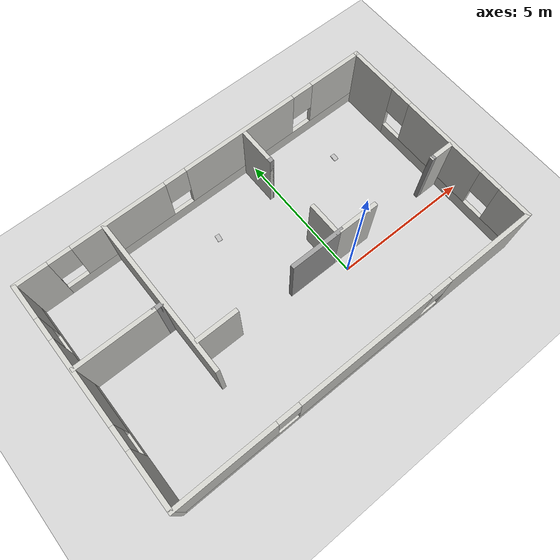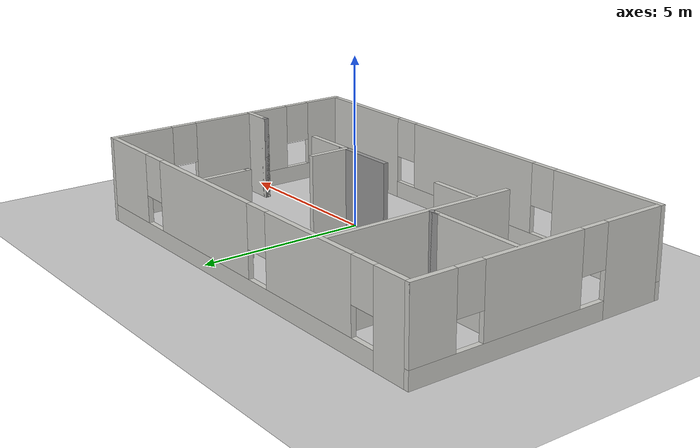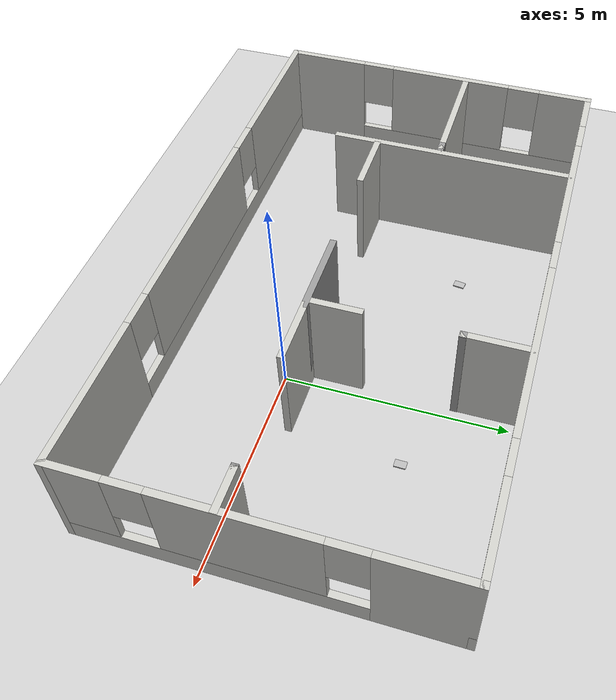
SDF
<sdf version="1.7">
 <world name="default">
  <light name="sun" type="directional">
   <pose>0 0 10 0 -0 0</pose>
   <diffuse>0.8 0.8 0.8 1</diffuse>
   <specular>0.2 0.2 0.2 1</specular>
   <attenuation>
    <range>1000</range>
    <constant>0.9</constant>
    <linear>0.01</linear>
    <quadratic>0.001</quadratic>
   </attenuation>
   <direction>-0.5 0.1 -0.9</direction>
   <spot><inner_angle>0</inner_angle><outer_angle>0</outer_angle><falloff>0</falloff></spot>
  </light>
  <model name="ground_plane">
   <static>1</static>
   <link name="link">
    <collision name="collision">
     <geometry><plane><normal>0 0 1</normal><size>100 100</size></plane></geometry>
     <surface><friction><ode><mu>100</mu><mu2>50</mu2></ode></friction></surface>
    </collision>
    <visual name="visual">
     <cast_shadows>0</cast_shadows>
     <geometry><plane><normal>0 0 1</normal><size>100 100</size></plane></geometry>
     <material>
      <script><uri>file://media/materials/scripts/gazebo.material</uri><name>Gazebo/Grey</name></script>
     </material>
    </visual>
   </link>
  </model>
  <gravity>0 0 -9.8</gravity>
  <magnetic_field>6e-06 2.3e-05 -4.2e-05</magnetic_field>
  <atmosphere type="adiabatic"/>
  <physics type="ode">
   <max_step_size>0.001</max_step_size>
   <real_time_factor>1</real_time_factor>
   <real_time_update_rate>1000</real_time_update_rate>
  </physics>
  <scene><ambient>0.4 0.4 0.4 1</ambient><background>0.7 0.7 0.7 1</background><shadows>1</shadows></scene>
  <audio><device>default</device></audio>
  <spherical_coordinates>
   <surface_model>EARTH_WGS84</surface_model>
   <latitude_deg>0</latitude_deg>
   <longitude_deg>0</longitude_deg>
   <elevation>0</elevation>
   <heading_deg>0</heading_deg>
  </spherical_coordinates>
  <model name="book_10">
   <link name="cover">
    <pose>0 -0.000108 0.015405 0 -0 0</pose>
    <visual name="visual">
     <geometry><box><size>0.245 0.16 0.03</size></box></geometry>
     <material>
      <script>
       <uri>model://book_10/materials/scripts</uri>
       <uri>model://book_10/materials/textures</uri>
       <name>book_10</name>
      </script>
     </material>
    </visual>
    <collision name="collision"><geometry><box><size>0.245 0.16 0.03</size></box></geometry></collision>
   </link>
   <link name="page">
    <pose>0 0.000608 0.015405 0 -0 0</pose>
    <visual name="visual">
     <geometry><box><size>0.24502 0.15862 0.028</size></box></geometry>
     <material>
      <lighting>1</lighting>
      <ambient>1 1 1 1</ambient>
      <diffuse>1 1 1 1</diffuse>
      <specular>0.01 0.01 0.01 1</specular>
      <emissive>0 0 0 1</emissive>
      <shader type="vertex"><normal_map>__default__</normal_map></shader>
     </material>
    </visual>
    <collision name="collision"><geometry><box><size>0.245 0.16 0.03</size></box></geometry></collision>
   </link>
   <static>1</static>
   <pose>-2.8831 3.22533 1.04702 0 -0 1.43256</pose>
  </model>
  <model name="book_2">
   <link name="cover">
    <pose>0 -0.000108 0.015405 0 -0 0</pose>
    <visual name="visual">
     <geometry><box><size>0.245 0.16 0.03</size></box></geometry>
     <material>
      <script>
       <uri>model://book_2/materials/scripts</uri>
       <uri>model://book_2/materials/textures</uri>
       <name>book_2</name>
      </script>
     </material>
    </visual>
    <collision name="collision"><geometry><box><size>0.245 0.16 0.03</size></box></geometry></collision>
   </link>
   <link name="page">
    <pose>0 0.000608 0.015405 0 -0 0</pose>
    <visual name="visual">
     <geometry><box><size>0.24502 0.15862 0.028</size></box></geometry>
     <material>
      <lighting>1</lighting>
      <ambient>1 1 1 1</ambient>
      <diffuse>1 1 1 1</diffuse>
      <specular>0.01 0.01 0.01 1</specular>
      <emissive>0 0 0 1</emissive>
      <shader type="vertex"><normal_map>__default__</normal_map></shader>
     </material>
    </visual>
    <collision name="collision"><geometry><box><size>0.245 0.16 0.03</size></box></geometry></collision>
   </link>
   <static>1</static>
   <pose>2.02369 3.14608 1.02891 0 -0 1.55345</pose>
  </model>
  <model name="Untitled_0">
   <pose>-2.05923 1.24358 0 0 -0 0</pose>
   <link name="Wall_0">
    <pose>-6.675 0 0 0 -0 1.5708</pose>
    <visual name="Wall_0_Visual_0">
     <pose>-2.99119 0 1.25 0 -0 0</pose>
     <geometry><box><size>2.01762 0.15 2.5</size></box></geometry>
     <material>
      <script><uri>file://media/materials/scripts/gazebo.material</uri><name>Gazebo/CeilingTiled</name></script>
      <ambient>1 1 1 1</ambient>
     </material>
     <meta><layer>0</layer></meta>
    </visual>
    <collision name="Wall_0_Collision_0">
     <geometry><box><size>2.01762 0.15 2.5</size></box></geometry>
     <pose>-2.99119 0 1.25 0 -0 0</pose>
    </collision>
    <visual name="Wall_0_Visual_1">
     <pose>1.00881 0 0.25 0 -0 0</pose>
     <geometry><box><size>5.98238 0.15 0.5</size></box></geometry>
     <material>
      <script><uri>file://media/materials/scripts/gazebo.material</uri><name>Gazebo/CeilingTiled</name></script>
      <ambient>1 1 1 1</ambient>
     </material>
     <meta><layer>0</layer></meta>
    </visual>
    <collision name="Wall_0_Collision_1">
     <geometry><box><size>5.98238 0.15 0.5</size></box></geometry>
     <pose>1.00881 0 0.25 0 -0 0</pose>
    </collision>
    <visual name="Wall_0_Visual_2">
     <pose>0.348522 0 1.5 0 -0 0</pose>
     <geometry><box><size>3.06181 0.15 2</size></box></geometry>
     <material>
      <script><uri>file://media/materials/scripts/gazebo.material</uri><name>Gazebo/CeilingTiled</name></script>
      <ambient>1 1 1 1</ambient>
     </material>
     <meta><layer>0</layer></meta>
    </visual>
    <collision name="Wall_0_Collision_2">
     <geometry><box><size>3.06181 0.15 2</size></box></geometry>
     <pose>0.348522 0 1.5 0 -0 0</pose>
    </collision>
    <visual name="Wall_0_Visual_3">
     <pose>3.33971 0 1.5 0 -0 0</pose>
     <geometry><box><size>1.32058 0.15 2</size></box></geometry>
     <material>
      <script><uri>file://media/materials/scripts/gazebo.material</uri><name>Gazebo/CeilingTiled</name></script>
      <ambient>1 1 1 1</ambient>
     </material>
     <meta><layer>0</layer></meta>
    </visual>
    <collision name="Wall_0_Collision_3">
     <geometry><box><size>1.32058 0.15 2</size></box></geometry>
     <pose>3.33971 0 1.5 0 -0 0</pose>
    </collision>
    <visual name="Wall_0_Visual_4">
     <pose>-1.58238 0 1.9 0 -0 0</pose>
     <geometry><box><size>0.8 0.15 1.2</size></box></geometry>
     <material>
      <script><uri>file://media/materials/scripts/gazebo.material</uri><name>Gazebo/CeilingTiled</name></script>
      <ambient>1 1 1 1</ambient>
     </material>
     <meta><layer>0</layer></meta>
    </visual>
    <collision name="Wall_0_Collision_4">
     <geometry><box><size>0.8 0.15 1.2</size></box></geometry>
     <pose>-1.58238 0 1.9 0 -0 0</pose>
    </collision>
    <visual name="Wall_0_Visual_5">
     <pose>2.27942 0 1.9 0 -0 0</pose>
     <geometry><box><size>0.8 0.15 1.2</size></box></geometry>
     <material>
      <script><uri>file://media/materials/scripts/gazebo.material</uri><name>Gazebo/CeilingTiled</name></script>
      <ambient>1 1 1 1</ambient>
     </material>
     <meta><layer>0</layer></meta>
    </visual>
    <collision name="Wall_0_Collision_5">
     <geometry><box><size>0.8 0.15 1.2</size></box></geometry>
     <pose>2.27942 0 1.9 0 -0 0</pose>
    </collision>
   </link>
   <link name="Wall_1">
    <pose>0 3.925 0 0 -0 0</pose>
    <visual name="Wall_1_Visual_0">
     <pose>-6.14513 0 1.25 0 -0 0</pose>
     <geometry><box><size>1.20975 0.15 2.5</size></box></geometry>
     <material>
      <script><uri>file://media/materials/scripts/gazebo.material</uri><name>Gazebo/CeilingTiled</name></script>
      <ambient>1 1 1 1</ambient>
     </material>
     <meta><layer>0</layer></meta>
    </visual>
    <collision name="Wall_1_Collision_0">
     <geometry><box><size>1.20975 0.15 2.5</size></box></geometry>
     <pose>-6.14513 0 1.25 0 -0 0</pose>
    </collision>
    <visual name="Wall_1_Visual_1">
     <pose>0.604874 0 0.25 0 -0 0</pose>
     <geometry><box><size>12.2903 0.15 0.5</size></box></geometry>
     <material>
      <script><uri>file://media/materials/scripts/gazebo.material</uri><name>Gazebo/CeilingTiled</name></script>
      <ambient>1 1 1 1</ambient>
     </material>
     <meta><layer>0</layer></meta>
    </visual>
    <collision name="Wall_1_Collision_1">
     <geometry><box><size>12.2903 0.15 0.5</size></box></geometry>
     <pose>0.604874 0 0.25 0 -0 0</pose>
    </collision>
    <visual name="Wall_1_Visual_2">
     <pose>-3.02833 0 1.5 0 -0 0</pose>
     <geometry><box><size>3.42385 0.15 2</size></box></geometry>
     <material>
      <script><uri>file://media/materials/scripts/gazebo.material</uri><name>Gazebo/CeilingTiled</name></script>
      <ambient>1 1 1 1</ambient>
     </material>
     <meta><layer>0</layer></meta>
    </visual>
    <collision name="Wall_1_Collision_2">
     <geometry><box><size>3.42385 0.15 2</size></box></geometry>
     <pose>-3.02833 0 1.5 0 -0 0</pose>
    </collision>
    <visual name="Wall_1_Visual_3">
     <pose>1.66819 0 1.5 0 -0 0</pose>
     <geometry><box><size>4.36919 0.15 2</size></box></geometry>
     <material>
      <script><uri>file://media/materials/scripts/gazebo.material</uri><name>Gazebo/CeilingTiled</name></script>
      <ambient>1 1 1 1</ambient>
     </material>
     <meta><layer>0</layer></meta>
    </visual>
    <collision name="Wall_1_Collision_3">
     <geometry><box><size>4.36919 0.15 2</size></box></geometry>
     <pose>1.66819 0 1.5 0 -0 0</pose>
    </collision>
    <visual name="Wall_1_Visual_4">
     <pose>5.70139 0 1.5 0 -0 0</pose>
     <geometry><box><size>2.09721 0.15 2</size></box></geometry>
     <material>
      <script><uri>file://media/materials/scripts/gazebo.material</uri><name>Gazebo/CeilingTiled</name></script>
      <ambient>1 1 1 1</ambient>
     </material>
     <meta><layer>0</layer></meta>
    </visual>
    <collision name="Wall_1_Collision_4">
     <geometry><box><size>2.09721 0.15 2</size></box></geometry>
     <pose>5.70139 0 1.5 0 -0 0</pose>
    </collision>
    <visual name="Wall_1_Visual_5">
     <pose>-5.14025 0 1.9 0 -0 0</pose>
     <geometry><box><size>0.8 0.15 1.2</size></box></geometry>
     <material>
      <script><uri>file://media/materials/scripts/gazebo.material</uri><name>Gazebo/CeilingTiled</name></script>
      <ambient>1 1 1 1</ambient>
     </material>
     <meta><layer>0</layer></meta>
    </visual>
    <collision name="Wall_1_Collision_5">
     <geometry><box><size>0.8 0.15 1.2</size></box></geometry>
     <pose>-5.14025 0 1.9 0 -0 0</pose>
    </collision>
    <visual name="Wall_1_Visual_6">
     <pose>-0.916401 0 1.9 0 -0 0</pose>
     <geometry><box><size>0.8 0.15 1.2</size></box></geometry>
     <material>
      <script><uri>file://media/materials/scripts/gazebo.material</uri><name>Gazebo/CeilingTiled</name></script>
      <ambient>1 1 1 1</ambient>
     </material>
     <meta><layer>0</layer></meta>
    </visual>
    <collision name="Wall_1_Collision_6">
     <geometry><box><size>0.8 0.15 1.2</size></box></geometry>
     <pose>-0.916401 0 1.9 0 -0 0</pose>
    </collision>
    <visual name="Wall_1_Visual_7">
     <pose>4.25279 0 1.9 0 -0 0</pose>
     <geometry><box><size>0.8 0.15 1.2</size></box></geometry>
     <material>
      <script><uri>file://media/materials/scripts/gazebo.material</uri><name>Gazebo/CeilingTiled</name></script>
      <ambient>1 1 1 1</ambient>
     </material>
     <meta><layer>0</layer></meta>
    </visual>
    <collision name="Wall_1_Collision_7">
     <geometry><box><size>0.8 0.15 1.2</size></box></geometry>
     <pose>4.25279 0 1.9 0 -0 0</pose>
    </collision>
   </link>
   <link name="Wall_10">
    <collision name="Wall_10_Collision">
     <geometry><box><size>0.25 0.15 2.5</size></box></geometry>
     <pose>0 0 1.25 0 -0 0</pose>
    </collision>
    <visual name="Wall_10_Visual">
     <pose>0 0 1.25 0 -0 0</pose>
     <geometry><box><size>0.25 0.15 2.5</size></box></geometry>
     <material>
      <script><uri>file://media/materials/scripts/gazebo.material</uri><name>Gazebo/Grey</name></script>
      <ambient>1 1 1 1</ambient>
     </material>
     <meta><layer>0</layer></meta>
    </visual>
    <pose>-3.83103 0.774776 0 0 -0 3.14159</pose>
   </link>
   <link name="Wall_15">
    <collision name="Wall_15_Collision">
     <geometry><box><size>0.25 0.15 2.5</size></box></geometry>
     <pose>0 0 1.25 0 -0 0</pose>
    </collision>
    <visual name="Wall_15_Visual">
     <pose>0 0 1.25 0 -0 0</pose>
     <geometry><box><size>0.25 0.15 2.5</size></box></geometry>
     <material>
      <script><uri>file://media/materials/scripts/gazebo.material</uri><name>Gazebo/Grey</name></script>
      <ambient>1 1 1 1</ambient>
     </material>
     <meta><layer>0</layer></meta>
    </visual>
    <pose>-3.73103 0.774776 0 0 -0 0</pose>
   </link>
   <link name="Wall_17">
    <collision name="Wall_17_Collision">
     <geometry><box><size>1.5 0.15 2.5</size></box></geometry>
     <pose>0 0 1.25 0 -0 0</pose>
    </collision>
    <visual name="Wall_17_Visual">
     <pose>0 0 1.25 0 -0 0</pose>
     <geometry><box><size>1.5 0.15 2.5</size></box></geometry>
     <material>
      <script><uri>file://media/materials/scripts/gazebo.material</uri><name>Gazebo/CeilingTiled</name></script>
      <ambient>1 1 1 1</ambient>
     </material>
     <meta><layer>0</layer></meta>
    </visual>
    <pose>-2.79582 -0.737611 0 0 -0 0</pose>
   </link>
   <link name="Wall_19">
    <collision name="Wall_19_Collision">
     <geometry><box><size>1.5 0.15 2.5</size></box></geometry>
     <pose>0 0 1.25 0 -0 0</pose>
    </collision>
    <visual name="Wall_19_Visual">
     <pose>0 0 1.25 0 -0 0</pose>
     <geometry><box><size>1.5 0.15 2.5</size></box></geometry>
     <material>
      <script><uri>file://media/materials/scripts/gazebo.material</uri><name>Gazebo/CeilingTiled</name></script>
      <ambient>1 1 1 1</ambient>
     </material>
     <meta><layer>0</layer></meta>
    </visual>
    <pose>1.77882 3.1934 0 0 -0 -1.5708</pose>
   </link>
   <link name="Wall_2">
    <pose>6.675 0 0 0 -0 -1.5708</pose>
    <visual name="Wall_2_Visual_0">
     <pose>-3.03801 0 1.25 0 -0 0</pose>
     <geometry><box><size>1.92398 0.15 2.5</size></box></geometry>
     <material>
      <script><uri>file://media/materials/scripts/gazebo.material</uri><name>Gazebo/CeilingTiled</name></script>
      <ambient>1 1 1 1</ambient>
     </material>
     <meta><layer>0</layer></meta>
    </visual>
    <collision name="Wall_2_Collision_0">
     <geometry><box><size>1.92398 0.15 2.5</size></box></geometry>
     <pose>-3.03801 0 1.25 0 -0 0</pose>
    </collision>
    <visual name="Wall_2_Visual_1">
     <pose>0.961991 0 0.25 0 -0 0</pose>
     <geometry><box><size>6.07602 0.15 0.5</size></box></geometry>
     <material>
      <script><uri>file://media/materials/scripts/gazebo.material</uri><name>Gazebo/CeilingTiled</name></script>
      <ambient>1 1 1 1</ambient>
     </material>
     <meta><layer>0</layer></meta>
    </visual>
    <collision name="Wall_2_Collision_1">
     <geometry><box><size>6.07602 0.15 0.5</size></box></geometry>
     <pose>0.961991 0 0.25 0 -0 0</pose>
    </collision>
    <visual name="Wall_2_Visual_2">
     <pose>0.345397 0 1.5 0 -0 0</pose>
     <geometry><box><size>3.24283 0.15 2</size></box></geometry>
     <material>
      <script><uri>file://media/materials/scripts/gazebo.material</uri><name>Gazebo/CeilingTiled</name></script>
      <ambient>1 1 1 1</ambient>
     </material>
     <meta><layer>0</layer></meta>
    </visual>
    <collision name="Wall_2_Collision_2">
     <geometry><box><size>3.24283 0.15 2</size></box></geometry>
     <pose>0.345397 0 1.5 0 -0 0</pose>
    </collision>
    <visual name="Wall_2_Visual_3">
     <pose>3.38341 0 1.5 0 -0 0</pose>
     <geometry><box><size>1.23319 0.15 2</size></box></geometry>
     <material>
      <script><uri>file://media/materials/scripts/gazebo.material</uri><name>Gazebo/CeilingTiled</name></script>
      <ambient>1 1 1 1</ambient>
     </material>
     <meta><layer>0</layer></meta>
    </visual>
    <collision name="Wall_2_Collision_3">
     <geometry><box><size>1.23319 0.15 2</size></box></geometry>
     <pose>3.38341 0 1.5 0 -0 0</pose>
    </collision>
    <visual name="Wall_2_Visual_4">
     <pose>-1.67602 0 1.9 0 -0 0</pose>
     <geometry><box><size>0.8 0.15 1.2</size></box></geometry>
     <material>
      <script><uri>file://media/materials/scripts/gazebo.material</uri><name>Gazebo/CeilingTiled</name></script>
      <ambient>1 1 1 1</ambient>
     </material>
     <meta><layer>0</layer></meta>
    </visual>
    <collision name="Wall_2_Collision_4">
     <geometry><box><size>0.8 0.15 1.2</size></box></geometry>
     <pose>-1.67602 0 1.9 0 -0 0</pose>
    </collision>
    <visual name="Wall_2_Visual_5">
     <pose>2.36681 0 1.9 0 -0 0</pose>
     <geometry><box><size>0.8 0.15 1.2</size></box></geometry>
     <material>
      <script><uri>file://media/materials/scripts/gazebo.material</uri><name>Gazebo/CeilingTiled</name></script>
      <ambient>1 1 1 1</ambient>
     </material>
     <meta><layer>0</layer></meta>
    </visual>
    <collision name="Wall_2_Collision_5">
     <geometry><box><size>0.8 0.15 1.2</size></box></geometry>
     <pose>2.36681 0 1.9 0 -0 0</pose>
    </collision>
   </link>
   <link name="Wall_20">
    <collision name="Wall_20_Collision">
     <geometry><box><size>0.16 0.15 2.5</size></box></geometry>
     <pose>0 0 1.25 0 -0 0</pose>
    </collision>
    <visual name="Wall_20_Visual">
     <pose>0 0 1.25 0 -0 0</pose>
     <geometry><box><size>0.16 0.15 2.5</size></box></geometry>
     <material>
      <script><uri>file://media/materials/scripts/gazebo.material</uri><name>Gazebo/Grey</name></script>
      <ambient>1 1 1 1</ambient>
     </material>
     <meta><layer>0</layer></meta>
    </visual>
    <pose>1.78382 2.5184 0 0 -0 0</pose>
   </link>
   <link name="Wall_22">
    <collision name="Wall_22_Collision">
     <geometry><box><size>2 0.15 2.5</size></box></geometry>
     <pose>0 0 1.25 0 -0 0</pose>
    </collision>
    <visual name="Wall_22_Visual">
     <pose>0 0 1.25 0 -0 0</pose>
     <geometry><box><size>2 0.15 2.5</size></box></geometry>
     <material>
      <script><uri>file://media/materials/scripts/gazebo.material</uri><name>Gazebo/Grey</name></script>
      <ambient>1 1 1 1</ambient>
     </material>
     <meta><layer>0</layer></meta>
    </visual>
    <pose>0.994164 -0.717498 0 0 -0 0</pose>
   </link>
   <link name="Wall_25">
    <collision name="Wall_25_Collision">
     <geometry><box><size>1.5 0.15 2.5</size></box></geometry>
     <pose>0 0 1.25 0 -0 0</pose>
    </collision>
    <visual name="Wall_25_Visual">
     <pose>0 0 1.25 0 -0 0</pose>
     <geometry><box><size>1.5 0.15 2.5</size></box></geometry>
     <material>
      <script><uri>file://media/materials/scripts/gazebo.material</uri><name>Gazebo/CeilingTiled</name></script>
      <ambient>1 1 1 1</ambient>
     </material>
     <meta><layer>0</layer></meta>
    </visual>
    <pose>2.59416 -0.717498 0 0 -0 0</pose>
   </link>
   <link name="Wall_27">
    <collision name="Wall_27_Collision">
     <geometry><box><size>1 0.15 2.5</size></box></geometry>
     <pose>0 0 1.25 0 -0 0</pose>
    </collision>
    <visual name="Wall_27_Visual">
     <pose>0 0 1.25 0 -0 0</pose>
     <geometry><box><size>1 0.15 2.5</size></box></geometry>
     <material>
      <script><uri>file://media/materials/scripts/gazebo.material</uri><name>Gazebo/CeilingTiled</name></script>
      <ambient>1 1 1 1</ambient>
     </material>
     <meta><layer>0</layer></meta>
    </visual>
    <pose>6.24142 -0.657157 0 0 -0 3.14159</pose>
   </link>
   <link name="Wall_28">
    <collision name="Wall_28_Collision">
     <geometry><box><size>0.16 0.15 2.5</size></box></geometry>
     <pose>0 0 1.25 0 -0 0</pose>
    </collision>
    <visual name="Wall_28_Visual">
     <pose>0 0 1.25 0 -0 0</pose>
     <geometry><box><size>0.16 0.15 2.5</size></box></geometry>
     <material>
      <script><uri>file://media/materials/scripts/gazebo.material</uri><name>Gazebo/Grey</name></script>
      <ambient>1 1 1 1</ambient>
     </material>
     <meta><layer>0</layer></meta>
    </visual>
    <pose>5.82142 -0.657157 0 0 -0 0</pose>
   </link>
   <link name="Wall_3">
    <pose>0 -3.925 0 0 -0 3.14159</pose>
    <visual name="Wall_3_Visual_0">
     <pose>-5.05776 0 1.25 0 -0 0</pose>
     <geometry><box><size>3.38448 0.15 2.5</size></box></geometry>
     <material>
      <script><uri>file://media/materials/scripts/gazebo.material</uri><name>Gazebo/CeilingTiled</name></script>
      <ambient>1 1 1 1</ambient>
     </material>
     <meta><layer>0</layer></meta>
    </visual>
    <collision name="Wall_3_Collision_0">
     <geometry><box><size>3.38448 0.15 2.5</size></box></geometry>
     <pose>-5.05776 0 1.25 0 -0 0</pose>
    </collision>
    <visual name="Wall_3_Visual_1">
     <pose>1.69224 0 0.25 0 -0 0</pose>
     <geometry><box><size>10.1155 0.15 0.5</size></box></geometry>
     <material>
      <script><uri>file://media/materials/scripts/gazebo.material</uri><name>Gazebo/CeilingTiled</name></script>
      <ambient>1 1 1 1</ambient>
     </material>
     <meta><layer>0</layer></meta>
    </visual>
    <collision name="Wall_3_Collision_1">
     <geometry><box><size>10.1155 0.15 0.5</size></box></geometry>
     <pose>1.69224 0 0.25 0 -0 0</pose>
    </collision>
    <visual name="Wall_3_Visual_2">
     <pose>-0.099334 0 1.5 0 -0 0</pose>
     <geometry><box><size>4.93237 0.15 2</size></box></geometry>
     <material>
      <script><uri>file://media/materials/scripts/gazebo.material</uri><name>Gazebo/CeilingTiled</name></script>
      <ambient>1 1 1 1</ambient>
     </material>
     <meta><layer>0</layer></meta>
    </visual>
    <collision name="Wall_3_Collision_2">
     <geometry><box><size>4.93237 0.15 2</size></box></geometry>
     <pose>-0.099334 0 1.5 0 -0 0</pose>
    </collision>
    <visual name="Wall_3_Visual_3">
     <pose>4.95843 0 1.5 0 -0 0</pose>
     <geometry><box><size>3.58315 0.15 2</size></box></geometry>
     <material>
      <script><uri>file://media/materials/scripts/gazebo.material</uri><name>Gazebo/CeilingTiled</name></script>
      <ambient>1 1 1 1</ambient>
     </material>
     <meta><layer>0</layer></meta>
    </visual>
    <collision name="Wall_3_Collision_3">
     <geometry><box><size>3.58315 0.15 2</size></box></geometry>
     <pose>4.95843 0 1.5 0 -0 0</pose>
    </collision>
    <visual name="Wall_3_Visual_4">
     <pose>-2.96552 0 1.9 0 -0 0</pose>
     <geometry><box><size>0.8 0.15 1.2</size></box></geometry>
     <material>
      <script><uri>file://media/materials/scripts/gazebo.material</uri><name>Gazebo/CeilingTiled</name></script>
      <ambient>1 1 1 1</ambient>
     </material>
     <meta><layer>0</layer></meta>
    </visual>
    <collision name="Wall_3_Collision_4">
     <geometry><box><size>0.8 0.15 1.2</size></box></geometry>
     <pose>-2.96552 0 1.9 0 -0 0</pose>
    </collision>
    <visual name="Wall_3_Visual_5">
     <pose>2.76685 0 1.9 0 -0 0</pose>
     <geometry><box><size>0.8 0.15 1.2</size></box></geometry>
     <material>
      <script><uri>file://media/materials/scripts/gazebo.material</uri><name>Gazebo/CeilingTiled</name></script>
      <ambient>1 1 1 1</ambient>
     </material>
     <meta><layer>0</layer></meta>
    </visual>
    <collision name="Wall_3_Collision_5">
     <geometry><box><size>0.8 0.15 1.2</size></box></geometry>
     <pose>2.76685 0 1.9 0 -0 0</pose>
    </collision>
   </link>
   <link name="Wall_37">
    <collision name="Wall_37_Collision">
     <geometry><box><size>1.25 0.15 2.5</size></box></geometry>
     <pose>0 0 1.25 0 -0 0</pose>
    </collision>
    <visual name="Wall_37_Visual">
     <pose>0 0 1.25 0 -0 0</pose>
     <geometry><box><size>1.25 0.15 2.5</size></box></geometry>
     <material>
      <script><uri>file://media/materials/scripts/gazebo.material</uri><name>Gazebo/CeilingTiled</name></script>
      <ambient>1 1 1 1</ambient>
     </material>
     <meta><layer>0</layer></meta>
    </visual>
    <pose>1.77583 -0.144297 0 0 -0 -1.5708</pose>
   </link>
   <link name="Wall_5">
    <collision name="Wall_5_Collision">
     <geometry><box><size>5.75 0.15 2.5</size></box></geometry>
     <pose>0 0 1.25 0 -0 0</pose>
    </collision>
    <visual name="Wall_5_Visual">
     <pose>0 0 1.25 0 -0 0</pose>
     <geometry><box><size>5.75 0.15 2.5</size></box></geometry>
     <material>
      <script><uri>file://media/materials/scripts/gazebo.material</uri><name>Gazebo/CeilingTiled</name></script>
      <ambient>1 1 1 1</ambient>
     </material>
     <meta><layer>0</layer></meta>
    </visual>
    <pose>-3.57027 1.07052 0 0 -0 -1.5708</pose>
   </link>
   <link name="Wall_7">
    <collision name="Wall_7_Collision">
     <geometry><box><size>3 0.15 2.5</size></box></geometry>
     <pose>0 0 1.25 0 -0 0</pose>
    </collision>
    <visual name="Wall_7_Visual">
     <pose>0 0 1.25 0 -0 0</pose>
     <geometry><box><size>3 0.15 2.5</size></box></geometry>
     <material>
      <script><uri>file://media/materials/scripts/gazebo.material</uri><name>Gazebo/CeilingTiled</name></script>
      <ambient>1 1 1 1</ambient>
     </material>
     <meta><layer>0</layer></meta>
    </visual>
    <pose>-5.20603 0.774776 0 0 -0 0</pose>
   </link>
   <static>1</static>
  </model>
 </world>
</sdf>
